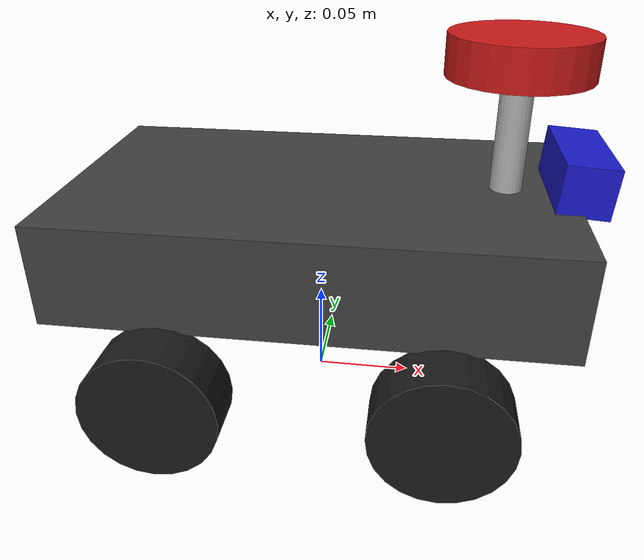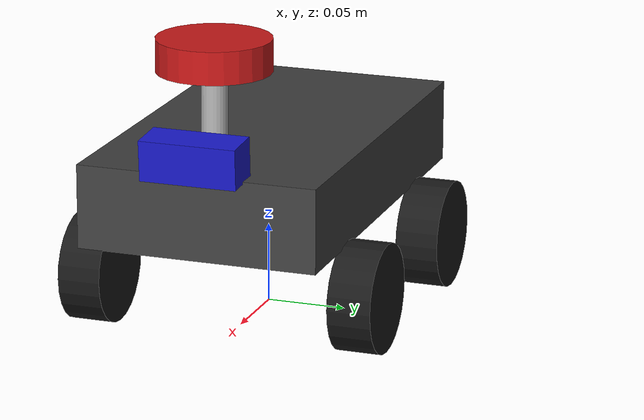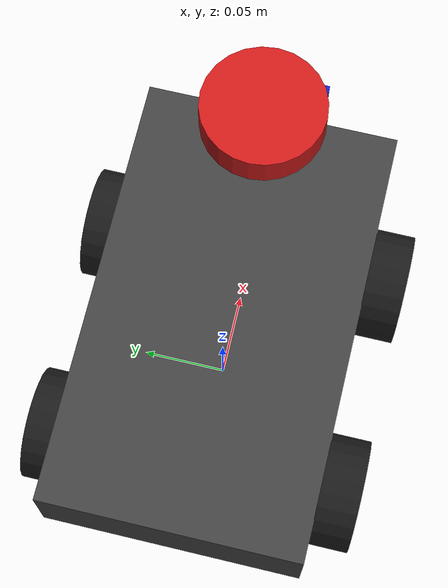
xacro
<?xml version="1.0"?>
<robot xmlns:xacro="http://www.ros.org/wiki/xacro" name="fire_robot">

  <!--  THÔNG SỐ KÍCH THƯỚC (từ Tai_Lieu_So_7_Kich_Thuoc_Robot.md)   -->
  <!--  Đơn vị: mét (m), radian (rad)                                -->

  <!-- Khung xe -->
  <xacro:property name="chassis_length"   value="0.255"/>
  <xacro:property name="chassis_width"    value="0.150"/>
  <xacro:property name="chassis_height"   value="0.052"/>
  <xacro:property name="ground_clearance" value="0.065"/>

  <!-- Bánh xe -->
  <xacro:property name="wheel_radius"  value="0.034"/>
  <xacro:property name="wheel_width"   value="0.027"/>
  <xacro:property name="track_width"   value="0.173"/>
  <xacro:property name="wheelbase"     value="0.135"/>

  <!-- Vị trí cảm biến (Z = ground_clearance + Z_đo_từ_đáy_xe) -->
  <xacro:property name="lidar_x"  value="0.094"/>
  <xacro:property name="lidar_z"  value="0.183"/>  <!-- 6.5 + 11.8 = 18.3cm -->

  <xacro:property name="camera_x"     value="0.1275"/>
  <xacro:property name="camera_z"     value="0.128"/>  <!-- 6.5 + 6.3 = 12.8cm -->
  <xacro:property name="camera_pitch" value="0.07"/>   <!-- ~4 độ nghiêng xuống -->

  <xacro:property name="imu_x"  value="0.016"/>
  <xacro:property name="imu_y"  value="-0.005"/>
  <xacro:property name="imu_z"  value="0.075"/>  <!-- 6.5 + 1.0 = 7.5cm -->

  <!--  BASE LINK (tâm xe, trên mặt đất Z=0)                         -->
  <link name="base_link"/>

  <link name="base_footprint"/>
  <joint name="base_footprint_joint" type="fixed">
    <parent link="base_link"/>
    <child link="base_footprint"/>
    <origin xyz="0 0 0" rpy="0 0 0"/>
  </joint>

  <!--  CHASSIS (khung xe hình hộp)                                   -->
  <link name="chassis_link">
    <visual>
      <geometry>
        <box size="${chassis_length} ${chassis_width} ${chassis_height}"/>
      </geometry>
      <material name="dark_grey">
        <color rgba="0.25 0.25 0.25 1.0"/>
      </material>
    </visual>
    <collision>
      <geometry>
        <box size="${chassis_length} ${chassis_width} ${chassis_height}"/>
      </geometry>
    </collision>
  </link>
  <joint name="chassis_joint" type="fixed">
    <parent link="base_link"/>
    <child link="chassis_link"/>
    <origin xyz="0 0 ${ground_clearance + chassis_height/2}" rpy="0 0 0"/>
  </joint>

  <!--  BÁNH XE (4 bánh, visual only, fixed joints)                   -->
  <xacro:macro name="wheel" params="name x_pos y_pos">
    <link name="${name}_wheel_link">
      <visual>
        <geometry>
          <cylinder radius="${wheel_radius}" length="${wheel_width}"/>
        </geometry>
        <material name="black">
          <color rgba="0.1 0.1 0.1 1.0"/>
        </material>
      </visual>
    </link>
    <joint name="${name}_wheel_joint" type="fixed">
      <parent link="base_link"/>
      <child link="${name}_wheel_link"/>
      <!-- Cylinder mặc định dọc Z, xoay pi/2 quanh X để nằm ngang -->
      <origin xyz="${x_pos} ${y_pos} ${wheel_radius}" rpy="${pi/2} 0 0"/>
    </joint>
  </xacro:macro>

  <xacro:wheel name="front_left"  x_pos="${wheelbase/2}"  y_pos="${track_width/2}"/>
  <xacro:wheel name="rear_left"   x_pos="${-wheelbase/2}" y_pos="${track_width/2}"/>
  <xacro:wheel name="front_right" x_pos="${wheelbase/2}"  y_pos="${-track_width/2}"/>
  <xacro:wheel name="rear_right"  x_pos="${-wheelbase/2}" y_pos="${-track_width/2}"/>

  <!--  CỘT ĐỠ LIDAR (pole visual)                                   -->
  <xacro:property name="pole_height" value="${lidar_z - ground_clearance - chassis_height}"/>
  <link name="lidar_pole_link">
    <visual>
      <geometry>
        <cylinder radius="0.008" length="${pole_height}"/>
      </geometry>
      <material name="silver">
        <color rgba="0.7 0.7 0.7 1.0"/>
      </material>
    </visual>
  </link>
  <joint name="lidar_pole_joint" type="fixed">
    <parent link="base_link"/>
    <child link="lidar_pole_link"/>
    <origin xyz="${lidar_x} 0 ${ground_clearance + chassis_height + pole_height/2}" rpy="0 0 0"/>
  </joint>

  <!--  LIDAR (laser_frame — quét ngang)                              -->
  <link name="laser_frame">
    <visual>
      <geometry>
        <cylinder radius="0.035" length="0.020"/>
      </geometry>
      <material name="red">
        <color rgba="0.8 0.1 0.1 1.0"/>
      </material>
    </visual>
  </link>
  <joint name="laser_joint" type="fixed">
    <parent link="base_link"/>
    <child link="laser_frame"/>
    <origin xyz="${lidar_x} 0 ${lidar_z}" rpy="0 0 0"/>
  </joint>

  <!--  CAMERA (camera_frame — nhìn thẳng, nghiêng xuống ~4°)         -->
  <link name="camera_frame">
    <visual>
      <geometry>
        <box size="0.025 0.060 0.025"/>
      </geometry>
      <material name="blue">
        <color rgba="0.1 0.1 0.8 1.0"/>
      </material>
    </visual>
  </link>
  <joint name="camera_joint" type="fixed">
    <parent link="base_link"/>
    <child link="camera_frame"/>
    <origin xyz="${camera_x} 0 ${camera_z}" rpy="0 ${camera_pitch} 0"/>
  </joint>

  <!-- Camera optical frame (chuẩn ROS: Z forward, X right, Y down) -->
  <link name="camera_optical_frame"/>
  <joint name="camera_optical_joint" type="fixed">
    <parent link="camera_frame"/>
    <child link="camera_optical_frame"/>
    <origin xyz="0 0 0" rpy="${-pi/2} 0 ${-pi/2}"/>
  </joint>

  <!--  IMU (imu_frame)                                               -->
  <link name="imu_frame">
    <visual>
      <geometry>
        <box size="0.020 0.020 0.005"/>
      </geometry>
      <material name="green">
        <color rgba="0.1 0.8 0.1 1.0"/>
      </material>
    </visual>
  </link>
  <joint name="imu_joint" type="fixed">
    <parent link="base_link"/>
    <child link="imu_frame"/>
    <origin xyz="${imu_x} ${imu_y} ${imu_z}" rpy="0 0 0"/>
  </joint>

</robot>
